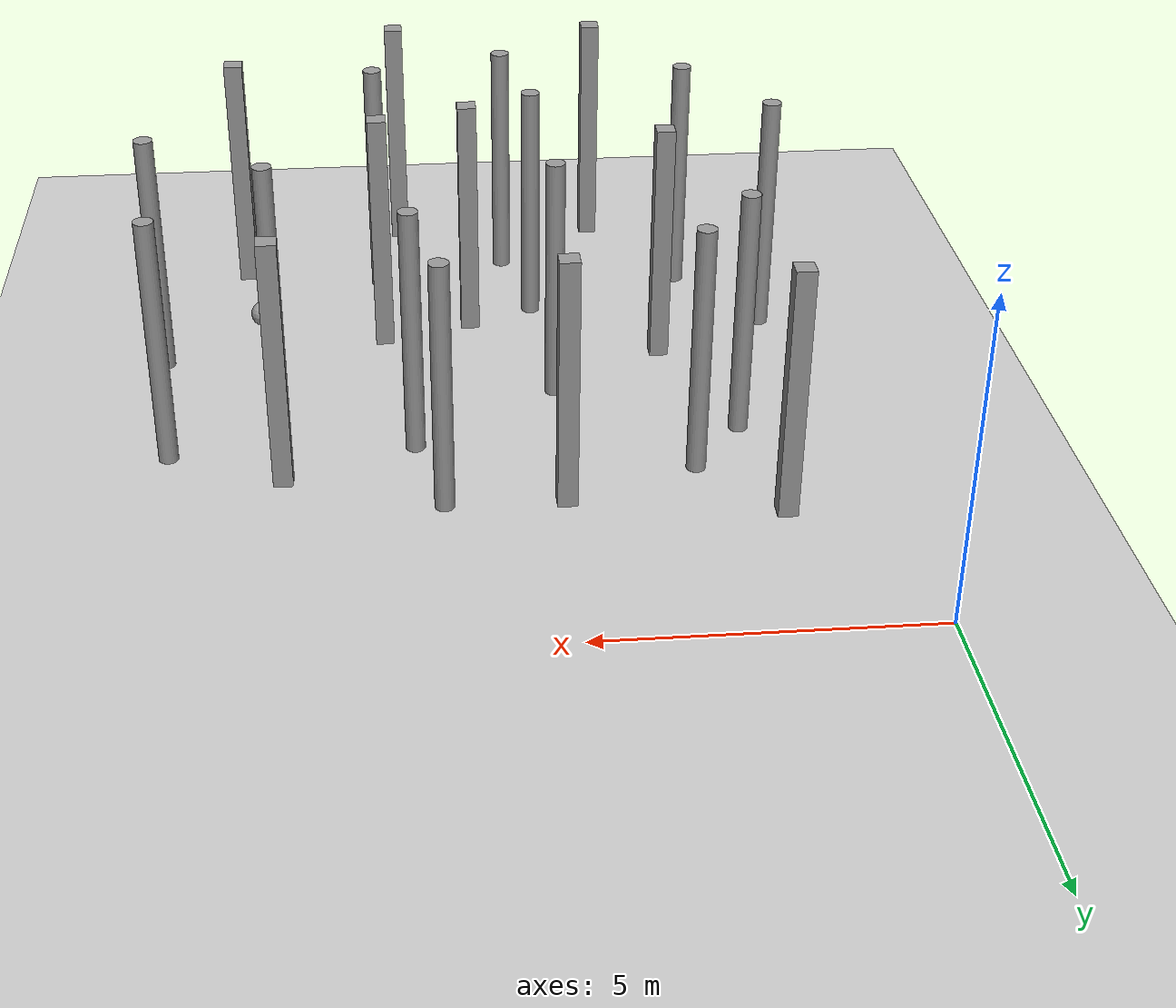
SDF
<sdf version="1.6">
 <world name="default">
  <model name="ground_plane">
   <static>1</static>
   <link name="link">
    <collision name="collision">
     <geometry><plane><normal>0 0 1</normal><size>100 100</size></plane></geometry>
    </collision>
    <visual name="visual">
     <cast_shadows>0</cast_shadows>
     <geometry><plane><normal>0 0 1</normal><size>100 100</size></plane></geometry>
     <material>
      <script><uri>file://media/materials/scripts/gazebo.material</uri><name>Gazebo/Gray</name></script>
     </material>
    </visual>
   </link>
  </model>
  <model name="unit_sphere">
   <link name="link">
    <inertial>
     <mass>1</mass>
     <inertia><ixx>0.1</ixx><ixy>0</ixy><ixz>0</ixz><iyy>0.1</iyy><iyz>0</iyz><izz>0.1</izz></inertia>
    </inertial>
    <gravity>0</gravity>
    <visual name="visual">
     <geometry><sphere><radius>0.203941</radius></sphere></geometry>
     <material>
      <script><name>Gazebo/Grey</name><uri>file://media/materials/scripts/gazebo.material</uri></script>
      <shader type="pixel"><normal_map>__default__</normal_map></shader>
     </material>
    </visual>
    <collision name="collision">
     <geometry><sphere><radius>0.203941</radius></sphere></geometry>
     <surface>
      <friction>
       <ode><mu>1</mu><mu2>1</mu2><fdir1>0 0 0</fdir1><slip1>0</slip1><slip2>0</slip2></ode>
       <torsional>
        <coefficient>1</coefficient>
        <patch_radius>0</patch_radius>
        <surface_radius>0</surface_radius>
        <use_patch_radius>1</use_patch_radius>
        <ode><slip>0</slip></ode>
       </torsional>
      </friction>
      <bounce><restitution_coefficient>0</restitution_coefficient><threshold>1e+06</threshold></bounce>
      <contact>
       <collide_without_contact>0</collide_without_contact>
       <collide_without_contact_bitmask>1</collide_without_contact_bitmask>
       <collide_bitmask>1</collide_bitmask>
       <ode>
        <soft_cfm>0</soft_cfm>
        <soft_erp>0.2</soft_erp>
        <kp>1e+13</kp>
        <kd>1</kd>
        <max_vel>0.01</max_vel>
        <min_depth>0</min_depth>
       </ode>
       <bullet>
        <split_impulse>1</split_impulse>
        <split_impulse_penetration_threshold>-0.01</split_impulse_penetration_threshold>
        <soft_cfm>0</soft_cfm>
        <soft_erp>0.2</soft_erp>
        <kp>1e+13</kp>
        <kd>1</kd>
       </bullet>
      </contact>
     </surface>
    </collision>
   </link>
   <static>0</static>
   <pose>9.54607 -9.14462 0.203941 0 -0 0</pose>
  </model>
  <model name="unit_box_clone_2">
   <link name="link">
    <inertial>
     <mass>1000</mass>
     <inertia><ixx>166.667</ixx><ixy>0</ixy><ixz>0</ixz><iyy>166.667</iyy><iyz>0</iyz><izz>166.667</izz></inertia>
    </inertial>
    <visual name="visual">
     <geometry><box><size>0.3 0.3 4</size></box></geometry>
     <material>
      <script><name>Gazebo/Grey</name><uri>file://media/materials/scripts/gazebo.material</uri></script>
      <shader type="vertex"><normal_map>__default__</normal_map></shader>
      <ambient>0.3 0.3 0.3 1</ambient>
      <diffuse>0.7 0.7 0.7 1</diffuse>
      <specular>0.01 0.01 0.01 1</specular>
      <emissive>0 0 0 1</emissive>
     </material>
    </visual>
    <collision name="collision">
     <geometry><box><size>0.3 0.3 4</size></box></geometry>
     <surface>
      <friction>
       <ode><mu>1</mu><mu2>1</mu2><fdir1>0 0 0</fdir1><slip1>0</slip1><slip2>0</slip2></ode>
       <torsional>
        <coefficient>1</coefficient>
        <patch_radius>0</patch_radius>
        <surface_radius>0</surface_radius>
        <use_patch_radius>1</use_patch_radius>
        <ode><slip>0</slip></ode>
       </torsional>
      </friction>
      <bounce><restitution_coefficient>0</restitution_coefficient><threshold>1e+06</threshold></bounce>
      <contact>
       <collide_without_contact>0</collide_without_contact>
       <collide_without_contact_bitmask>1</collide_without_contact_bitmask>
       <collide_bitmask>1</collide_bitmask>
       <ode>
        <soft_cfm>0</soft_cfm>
        <soft_erp>0.2</soft_erp>
        <kp>1e+13</kp>
        <kd>1</kd>
        <max_vel>0.01</max_vel>
        <min_depth>0</min_depth>
       </ode>
       <bullet>
        <split_impulse>1</split_impulse>
        <split_impulse_penetration_threshold>-0.01</split_impulse_penetration_threshold>
        <soft_cfm>0</soft_cfm>
        <soft_erp>0.2</soft_erp>
        <kp>1e+13</kp>
        <kd>1</kd>
       </bullet>
      </contact>
     </surface>
    </collision>
   </link>
   <static>0</static>
   <pose>4.92527 -3.34792 2 1e-06 2e-06 1.2e-05</pose>
  </model>
  <model name="unit_box_clone_7">
   <link name="link">
    <inertial>
     <mass>1000</mass>
     <inertia><ixx>166.667</ixx><ixy>0</ixy><ixz>0</ixz><iyy>166.667</iyy><iyz>0</iyz><izz>166.667</izz></inertia>
    </inertial>
    <visual name="visual">
     <geometry><box><size>0.3 0.3 4</size></box></geometry>
     <material>
      <script><name>Gazebo/Grey</name><uri>file://media/materials/scripts/gazebo.material</uri></script>
      <shader type="vertex"><normal_map>__default__</normal_map></shader>
      <ambient>0.3 0.3 0.3 1</ambient>
      <diffuse>0.7 0.7 0.7 1</diffuse>
      <specular>0.01 0.01 0.01 1</specular>
      <emissive>0 0 0 1</emissive>
     </material>
    </visual>
    <collision name="collision">
     <geometry><box><size>0.3 0.3 4</size></box></geometry>
     <surface>
      <friction>
       <ode><mu>1</mu><mu2>1</mu2><fdir1>0 0 0</fdir1><slip1>0</slip1><slip2>0</slip2></ode>
       <torsional>
        <coefficient>1</coefficient>
        <patch_radius>0</patch_radius>
        <surface_radius>0</surface_radius>
        <use_patch_radius>1</use_patch_radius>
        <ode><slip>0</slip></ode>
       </torsional>
      </friction>
      <bounce><restitution_coefficient>0</restitution_coefficient><threshold>1e+06</threshold></bounce>
      <contact>
       <collide_without_contact>0</collide_without_contact>
       <collide_without_contact_bitmask>1</collide_without_contact_bitmask>
       <collide_bitmask>1</collide_bitmask>
       <ode>
        <soft_cfm>0</soft_cfm>
        <soft_erp>0.2</soft_erp>
        <kp>1e+13</kp>
        <kd>1</kd>
        <max_vel>0.01</max_vel>
        <min_depth>0</min_depth>
       </ode>
       <bullet>
        <split_impulse>1</split_impulse>
        <split_impulse_penetration_threshold>-0.01</split_impulse_penetration_threshold>
        <soft_cfm>0</soft_cfm>
        <soft_erp>0.2</soft_erp>
        <kp>1e+13</kp>
        <kd>1</kd>
       </bullet>
      </contact>
     </surface>
    </collision>
   </link>
   <static>0</static>
   <pose>9.86052 -10.963 2 -1.2e-05 -4e-06 -0.004853</pose>
  </model>
  <model name="unit_cylinder_clone_0">
   <link name="link">
    <inertial>
     <mass>1000</mass>
     <inertia><ixx>145.833</ixx><ixy>0</ixy><ixz>0</ixz><iyy>145.833</iyy><iyz>0</iyz><izz>125</izz></inertia>
    </inertial>
    <visual name="visual">
     <geometry><cylinder><radius>0.15</radius><length>4</length></cylinder></geometry>
     <material>
      <script><name>Gazebo/Grey</name><uri>file://media/materials/scripts/gazebo.material</uri></script>
      <shader type="vertex"><normal_map>__default__</normal_map></shader>
      <ambient>0.3 0.3 0.3 1</ambient>
      <diffuse>0.7 0.7 0.7 1</diffuse>
      <specular>0.01 0.01 0.01 1</specular>
      <emissive>0 0 0 1</emissive>
     </material>
    </visual>
    <collision name="collision">
     <geometry><cylinder><radius>0.15</radius><length>4</length></cylinder></geometry>
     <surface>
      <friction>
       <ode><mu>1</mu><mu2>1</mu2><fdir1>0 0 0</fdir1><slip1>0</slip1><slip2>0</slip2></ode>
       <torsional>
        <coefficient>1</coefficient>
        <patch_radius>0</patch_radius>
        <surface_radius>0</surface_radius>
        <use_patch_radius>1</use_patch_radius>
        <ode><slip>0</slip></ode>
       </torsional>
      </friction>
      <bounce><restitution_coefficient>0</restitution_coefficient><threshold>1e+06</threshold></bounce>
      <contact>
       <collide_without_contact>0</collide_without_contact>
       <collide_without_contact_bitmask>1</collide_without_contact_bitmask>
       <collide_bitmask>1</collide_bitmask>
       <ode>
        <soft_cfm>0</soft_cfm>
        <soft_erp>0.2</soft_erp>
        <kp>1e+13</kp>
        <kd>1</kd>
        <max_vel>0.01</max_vel>
        <min_depth>0</min_depth>
       </ode>
       <bullet>
        <split_impulse>1</split_impulse>
        <split_impulse_penetration_threshold>-0.01</split_impulse_penetration_threshold>
        <soft_cfm>0</soft_cfm>
        <soft_erp>0.2</soft_erp>
        <kp>1e+13</kp>
        <kd>1</kd>
       </bullet>
      </contact>
     </surface>
    </collision>
   </link>
   <static>0</static>
   <pose>6.72054 -3.36529 1.99998 -1e-06 1e-06 -0.124958</pose>
  </model>
  <model name="unit_cylinder_clone_1">
   <link name="link">
    <inertial>
     <mass>1000</mass>
     <inertia><ixx>145.833</ixx><ixy>0</ixy><ixz>0</ixz><iyy>145.833</iyy><iyz>0</iyz><izz>125</izz></inertia>
    </inertial>
    <visual name="visual">
     <geometry><cylinder><radius>0.15</radius><length>4</length></cylinder></geometry>
     <material>
      <script><name>Gazebo/Grey</name><uri>file://media/materials/scripts/gazebo.material</uri></script>
      <shader type="vertex"><normal_map>__default__</normal_map></shader>
      <ambient>0.3 0.3 0.3 1</ambient>
      <diffuse>0.7 0.7 0.7 1</diffuse>
      <specular>0.01 0.01 0.01 1</specular>
      <emissive>0 0 0 1</emissive>
     </material>
    </visual>
    <collision name="collision">
     <geometry><cylinder><radius>0.15</radius><length>4</length></cylinder></geometry>
     <surface>
      <friction>
       <ode><mu>1</mu><mu2>1</mu2><fdir1>0 0 0</fdir1><slip1>0</slip1><slip2>0</slip2></ode>
       <torsional>
        <coefficient>1</coefficient>
        <patch_radius>0</patch_radius>
        <surface_radius>0</surface_radius>
        <use_patch_radius>1</use_patch_radius>
        <ode><slip>0</slip></ode>
       </torsional>
      </friction>
      <bounce><restitution_coefficient>0</restitution_coefficient><threshold>1e+06</threshold></bounce>
      <contact>
       <collide_without_contact>0</collide_without_contact>
       <collide_without_contact_bitmask>1</collide_without_contact_bitmask>
       <collide_bitmask>1</collide_bitmask>
       <ode>
        <soft_cfm>0</soft_cfm>
        <soft_erp>0.2</soft_erp>
        <kp>1e+13</kp>
        <kd>1</kd>
        <max_vel>0.01</max_vel>
        <min_depth>0</min_depth>
       </ode>
       <bullet>
        <split_impulse>1</split_impulse>
        <split_impulse_penetration_threshold>-0.01</split_impulse_penetration_threshold>
        <soft_cfm>0</soft_cfm>
        <soft_erp>0.2</soft_erp>
        <kp>1e+13</kp>
        <kd>1</kd>
       </bullet>
      </contact>
     </surface>
    </collision>
   </link>
   <static>0</static>
   <pose>2.0671 -5.17771 1.99998 -1e-06 1e-06 -0.117012</pose>
  </model>
  <model name="unit_cylinder_clone_2">
   <link name="link">
    <inertial>
     <mass>1000</mass>
     <inertia><ixx>145.833</ixx><ixy>0</ixy><ixz>0</ixz><iyy>145.833</iyy><iyz>0</iyz><izz>125</izz></inertia>
    </inertial>
    <visual name="visual">
     <geometry><cylinder><radius>0.15</radius><length>4</length></cylinder></geometry>
     <material>
      <script><name>Gazebo/Grey</name><uri>file://media/materials/scripts/gazebo.material</uri></script>
      <shader type="vertex"><normal_map>__default__</normal_map></shader>
      <ambient>0.3 0.3 0.3 1</ambient>
      <diffuse>0.7 0.7 0.7 1</diffuse>
      <specular>0.01 0.01 0.01 1</specular>
      <emissive>0 0 0 1</emissive>
     </material>
    </visual>
    <collision name="collision">
     <geometry><cylinder><radius>0.15</radius><length>4</length></cylinder></geometry>
     <surface>
      <friction>
       <ode><mu>1</mu><mu2>1</mu2><fdir1>0 0 0</fdir1><slip1>0</slip1><slip2>0</slip2></ode>
       <torsional>
        <coefficient>1</coefficient>
        <patch_radius>0</patch_radius>
        <surface_radius>0</surface_radius>
        <use_patch_radius>1</use_patch_radius>
        <ode><slip>0</slip></ode>
       </torsional>
      </friction>
      <bounce><restitution_coefficient>0</restitution_coefficient><threshold>1e+06</threshold></bounce>
      <contact>
       <collide_without_contact>0</collide_without_contact>
       <collide_without_contact_bitmask>1</collide_without_contact_bitmask>
       <collide_bitmask>1</collide_bitmask>
       <ode>
        <soft_cfm>0</soft_cfm>
        <soft_erp>0.2</soft_erp>
        <kp>1e+13</kp>
        <kd>1</kd>
        <max_vel>0.01</max_vel>
        <min_depth>0</min_depth>
       </ode>
       <bullet>
        <split_impulse>1</split_impulse>
        <split_impulse_penetration_threshold>-0.01</split_impulse_penetration_threshold>
        <soft_cfm>0</soft_cfm>
        <soft_erp>0.2</soft_erp>
        <kp>1e+13</kp>
        <kd>1</kd>
       </bullet>
      </contact>
     </surface>
    </collision>
   </link>
   <static>0</static>
   <pose>4.97452 -9.3049 1.99998 -2e-06 1e-06 -0.132911</pose>
  </model>
  <model name="unit_cylinder_clone_0_clone">
   <link name="link">
    <inertial>
     <mass>1000</mass>
     <inertia><ixx>145.833</ixx><ixy>0</ixy><ixz>0</ixz><iyy>145.833</iyy><iyz>0</iyz><izz>125</izz></inertia>
    </inertial>
    <visual name="visual">
     <geometry><cylinder><radius>0.15</radius><length>4</length></cylinder></geometry>
     <material>
      <script><name>Gazebo/Grey</name><uri>file://media/materials/scripts/gazebo.material</uri></script>
      <shader type="vertex"><normal_map>__default__</normal_map></shader>
      <ambient>0.3 0.3 0.3 1</ambient>
      <diffuse>0.7 0.7 0.7 1</diffuse>
      <specular>0.01 0.01 0.01 1</specular>
      <emissive>0 0 0 1</emissive>
     </material>
    </visual>
    <collision name="collision">
     <geometry><cylinder><radius>0.15</radius><length>4</length></cylinder></geometry>
     <surface>
      <friction>
       <ode><mu>1</mu><mu2>1</mu2><fdir1>0 0 0</fdir1><slip1>0</slip1><slip2>0</slip2></ode>
       <torsional>
        <coefficient>1</coefficient>
        <patch_radius>0</patch_radius>
        <surface_radius>0</surface_radius>
        <use_patch_radius>1</use_patch_radius>
        <ode><slip>0</slip></ode>
       </torsional>
      </friction>
      <bounce><restitution_coefficient>0</restitution_coefficient><threshold>1e+06</threshold></bounce>
      <contact>
       <collide_without_contact>0</collide_without_contact>
       <collide_without_contact_bitmask>1</collide_without_contact_bitmask>
       <collide_bitmask>1</collide_bitmask>
       <ode>
        <soft_cfm>0</soft_cfm>
        <soft_erp>0.2</soft_erp>
        <kp>1e+13</kp>
        <kd>1</kd>
        <max_vel>0.01</max_vel>
        <min_depth>0</min_depth>
       </ode>
       <bullet>
        <split_impulse>1</split_impulse>
        <split_impulse_penetration_threshold>-0.01</split_impulse_penetration_threshold>
        <soft_cfm>0</soft_cfm>
        <soft_erp>0.2</soft_erp>
        <kp>1e+13</kp>
        <kd>1</kd>
       </bullet>
      </contact>
     </surface>
    </collision>
   </link>
   <static>0</static>
   <pose>10.847 -4.99101 1.99998 -1e-06 1e-06 -0.116082</pose>
  </model>
  <model name="unit_cylinder_clone_1_clone_9">
   <link name="link">
    <inertial>
     <mass>1000</mass>
     <inertia><ixx>145.833</ixx><ixy>0</ixy><ixz>0</ixz><iyy>145.833</iyy><iyz>0</iyz><izz>125</izz></inertia>
    </inertial>
    <visual name="visual">
     <geometry><cylinder><radius>0.15</radius><length>4</length></cylinder></geometry>
     <material>
      <script><name>Gazebo/Grey</name><uri>file://media/materials/scripts/gazebo.material</uri></script>
      <shader type="vertex"><normal_map>__default__</normal_map></shader>
      <ambient>0.3 0.3 0.3 1</ambient>
      <diffuse>0.7 0.7 0.7 1</diffuse>
      <specular>0.01 0.01 0.01 1</specular>
      <emissive>0 0 0 1</emissive>
     </material>
    </visual>
    <collision name="collision">
     <geometry><cylinder><radius>0.15</radius><length>4</length></cylinder></geometry>
     <surface>
      <friction>
       <ode><mu>1</mu><mu2>1</mu2><fdir1>0 0 0</fdir1><slip1>0</slip1><slip2>0</slip2></ode>
       <torsional>
        <coefficient>1</coefficient>
        <patch_radius>0</patch_radius>
        <surface_radius>0</surface_radius>
        <use_patch_radius>1</use_patch_radius>
        <ode><slip>0</slip></ode>
       </torsional>
      </friction>
      <bounce><restitution_coefficient>0</restitution_coefficient><threshold>1e+06</threshold></bounce>
      <contact>
       <collide_without_contact>0</collide_without_contact>
       <collide_without_contact_bitmask>1</collide_without_contact_bitmask>
       <collide_bitmask>1</collide_bitmask>
       <ode>
        <soft_cfm>0</soft_cfm>
        <soft_erp>0.2</soft_erp>
        <kp>1e+13</kp>
        <kd>1</kd>
        <max_vel>0.01</max_vel>
        <min_depth>0</min_depth>
       </ode>
       <bullet>
        <split_impulse>1</split_impulse>
        <split_impulse_penetration_threshold>-0.01</split_impulse_penetration_threshold>
        <soft_cfm>0</soft_cfm>
        <soft_erp>0.2</soft_erp>
        <kp>1e+13</kp>
        <kd>1</kd>
       </bullet>
      </contact>
     </surface>
    </collision>
   </link>
   <static>0</static>
   <pose>11.1005 -7.87819 1.99995 -0.000268 4.9e-05 -0.611828</pose>
  </model>
  <model name="unit_cylinder_clone_1_clone_19">
   <link name="link">
    <inertial>
     <mass>1000</mass>
     <inertia><ixx>145.833</ixx><ixy>0</ixy><ixz>0</ixz><iyy>145.833</iyy><iyz>0</iyz><izz>125</izz></inertia>
    </inertial>
    <visual name="visual">
     <geometry><cylinder><radius>0.15</radius><length>4</length></cylinder></geometry>
     <material>
      <script><name>Gazebo/Grey</name><uri>file://media/materials/scripts/gazebo.material</uri></script>
      <shader type="vertex"><normal_map>__default__</normal_map></shader>
      <ambient>0.3 0.3 0.3 1</ambient>
      <diffuse>0.7 0.7 0.7 1</diffuse>
      <specular>0.01 0.01 0.01 1</specular>
      <emissive>0 0 0 1</emissive>
     </material>
    </visual>
    <collision name="collision">
     <geometry><cylinder><radius>0.15</radius><length>4</length></cylinder></geometry>
     <surface>
      <friction>
       <ode><mu>1</mu><mu2>1</mu2><fdir1>0 0 0</fdir1><slip1>0</slip1><slip2>0</slip2></ode>
       <torsional>
        <coefficient>1</coefficient>
        <patch_radius>0</patch_radius>
        <surface_radius>0</surface_radius>
        <use_patch_radius>1</use_patch_radius>
        <ode><slip>0</slip></ode>
       </torsional>
      </friction>
      <bounce><restitution_coefficient>0</restitution_coefficient><threshold>1e+06</threshold></bounce>
      <contact>
       <collide_without_contact>0</collide_without_contact>
       <collide_without_contact_bitmask>1</collide_without_contact_bitmask>
       <collide_bitmask>1</collide_bitmask>
       <ode>
        <soft_cfm>0</soft_cfm>
        <soft_erp>0.2</soft_erp>
        <kp>1e+13</kp>
        <kd>1</kd>
        <max_vel>0.01</max_vel>
        <min_depth>0</min_depth>
       </ode>
       <bullet>
        <split_impulse>1</split_impulse>
        <split_impulse_penetration_threshold>-0.01</split_impulse_penetration_threshold>
        <soft_cfm>0</soft_cfm>
        <soft_erp>0.2</soft_erp>
        <kp>1e+13</kp>
        <kd>1</kd>
       </bullet>
      </contact>
     </surface>
    </collision>
   </link>
   <static>0</static>
   <pose>1.12153 -8.56646 1.99995 -0.000268 4.9e-05 -0.613825</pose>
  </model>
  <model name="unit_cylinder_clone_1_clone_23">
   <link name="link">
    <inertial>
     <mass>1000</mass>
     <inertia><ixx>145.833</ixx><ixy>0</ixy><ixz>0</ixz><iyy>145.833</iyy><iyz>0</iyz><izz>125</izz></inertia>
    </inertial>
    <visual name="visual">
     <geometry><cylinder><radius>0.15</radius><length>4</length></cylinder></geometry>
     <material>
      <script><name>Gazebo/Grey</name><uri>file://media/materials/scripts/gazebo.material</uri></script>
      <shader type="vertex"><normal_map>__default__</normal_map></shader>
      <ambient>0.3 0.3 0.3 1</ambient>
      <diffuse>0.7 0.7 0.7 1</diffuse>
      <specular>0.01 0.01 0.01 1</specular>
      <emissive>0 0 0 1</emissive>
     </material>
    </visual>
    <collision name="collision">
     <geometry><cylinder><radius>0.15</radius><length>4</length></cylinder></geometry>
     <surface>
      <friction>
       <ode><mu>1</mu><mu2>1</mu2><fdir1>0 0 0</fdir1><slip1>0</slip1><slip2>0</slip2></ode>
       <torsional>
        <coefficient>1</coefficient>
        <patch_radius>0</patch_radius>
        <surface_radius>0</surface_radius>
        <use_patch_radius>1</use_patch_radius>
        <ode><slip>0</slip></ode>
       </torsional>
      </friction>
      <bounce><restitution_coefficient>0</restitution_coefficient><threshold>1e+06</threshold></bounce>
      <contact>
       <collide_without_contact>0</collide_without_contact>
       <collide_without_contact_bitmask>1</collide_without_contact_bitmask>
       <collide_bitmask>1</collide_bitmask>
       <ode>
        <soft_cfm>0</soft_cfm>
        <soft_erp>0.2</soft_erp>
        <kp>1e+13</kp>
        <kd>1</kd>
        <max_vel>0.01</max_vel>
        <min_depth>0</min_depth>
       </ode>
       <bullet>
        <split_impulse>1</split_impulse>
        <split_impulse_penetration_threshold>-0.01</split_impulse_penetration_threshold>
        <soft_cfm>0</soft_cfm>
        <soft_erp>0.2</soft_erp>
        <kp>1e+13</kp>
        <kd>1</kd>
       </bullet>
      </contact>
     </surface>
    </collision>
   </link>
   <static>0</static>
   <pose>7.09331 -5.00872 1.99998 -1e-06 -1e-06 -0.292628</pose>
  </model>
  <model name="unit_cylinder_clone_1_clone_24">
   <link name="link">
    <inertial>
     <mass>1000</mass>
     <inertia><ixx>145.833</ixx><ixy>0</ixy><ixz>0</ixz><iyy>145.833</iyy><iyz>0</iyz><izz>125</izz></inertia>
    </inertial>
    <visual name="visual">
     <geometry><cylinder><radius>0.15</radius><length>4</length></cylinder></geometry>
     <material>
      <script><name>Gazebo/Grey</name><uri>file://media/materials/scripts/gazebo.material</uri></script>
      <shader type="vertex"><normal_map>__default__</normal_map></shader>
      <ambient>0.3 0.3 0.3 1</ambient>
      <diffuse>0.7 0.7 0.7 1</diffuse>
      <specular>0.01 0.01 0.01 1</specular>
      <emissive>0 0 0 1</emissive>
     </material>
    </visual>
    <collision name="collision">
     <geometry><cylinder><radius>0.15</radius><length>4</length></cylinder></geometry>
     <surface>
      <friction>
       <ode><mu>1</mu><mu2>1</mu2><fdir1>0 0 0</fdir1><slip1>0</slip1><slip2>0</slip2></ode>
       <torsional>
        <coefficient>1</coefficient>
        <patch_radius>0</patch_radius>
        <surface_radius>0</surface_radius>
        <use_patch_radius>1</use_patch_radius>
        <ode><slip>0</slip></ode>
       </torsional>
      </friction>
      <bounce><restitution_coefficient>0</restitution_coefficient><threshold>1e+06</threshold></bounce>
      <contact>
       <collide_without_contact>0</collide_without_contact>
       <collide_without_contact_bitmask>1</collide_without_contact_bitmask>
       <collide_bitmask>1</collide_bitmask>
       <ode>
        <soft_cfm>0</soft_cfm>
        <soft_erp>0.2</soft_erp>
        <kp>1e+13</kp>
        <kd>1</kd>
        <max_vel>0.01</max_vel>
        <min_depth>0</min_depth>
       </ode>
       <bullet>
        <split_impulse>1</split_impulse>
        <split_impulse_penetration_threshold>-0.01</split_impulse_penetration_threshold>
        <soft_cfm>0</soft_cfm>
        <soft_erp>0.2</soft_erp>
        <kp>1e+13</kp>
        <kd>1</kd>
       </bullet>
      </contact>
     </surface>
    </collision>
   </link>
   <static>0</static>
   <pose>9.23703 -6.74087 1.99995 -0.000268 4.9e-05 -0.614826</pose>
  </model>
  <model name="unit_cylinder_clone_1_clone_7_clone_4">
   <link name="link">
    <inertial>
     <mass>1000</mass>
     <inertia><ixx>145.833</ixx><ixy>0</ixy><ixz>0</ixz><iyy>145.833</iyy><iyz>0</iyz><izz>125</izz></inertia>
    </inertial>
    <visual name="visual">
     <geometry><cylinder><radius>0.15</radius><length>4</length></cylinder></geometry>
     <material>
      <script><name>Gazebo/Grey</name><uri>file://media/materials/scripts/gazebo.material</uri></script>
      <shader type="vertex"><normal_map>__default__</normal_map></shader>
      <ambient>0.3 0.3 0.3 1</ambient>
      <diffuse>0.7 0.7 0.7 1</diffuse>
      <specular>0.01 0.01 0.01 1</specular>
      <emissive>0 0 0 1</emissive>
     </material>
    </visual>
    <collision name="collision">
     <geometry><cylinder><radius>0.15</radius><length>4</length></cylinder></geometry>
     <surface>
      <friction>
       <ode><mu>1</mu><mu2>1</mu2><fdir1>0 0 0</fdir1><slip1>0</slip1><slip2>0</slip2></ode>
       <torsional>
        <coefficient>1</coefficient>
        <patch_radius>0</patch_radius>
        <surface_radius>0</surface_radius>
        <use_patch_radius>1</use_patch_radius>
        <ode><slip>0</slip></ode>
       </torsional>
      </friction>
      <bounce><restitution_coefficient>0</restitution_coefficient><threshold>1e+06</threshold></bounce>
      <contact>
       <collide_without_contact>0</collide_without_contact>
       <collide_without_contact_bitmask>1</collide_without_contact_bitmask>
       <collide_bitmask>1</collide_bitmask>
       <ode>
        <soft_cfm>0</soft_cfm>
        <soft_erp>0.2</soft_erp>
        <kp>1e+13</kp>
        <kd>1</kd>
        <max_vel>0.01</max_vel>
        <min_depth>0</min_depth>
       </ode>
       <bullet>
        <split_impulse>1</split_impulse>
        <split_impulse_penetration_threshold>-0.01</split_impulse_penetration_threshold>
        <soft_cfm>0</soft_cfm>
        <soft_erp>0.2</soft_erp>
        <kp>1e+13</kp>
        <kd>1</kd>
       </bullet>
      </contact>
     </surface>
    </collision>
   </link>
   <static>0</static>
   <pose>2.33858 -10.2497 1.99995 -0.000268 4.9e-05 -0.611674</pose>
  </model>
  <model name="unit_cylinder_clone_1_clone_7_clone_9">
   <link name="link">
    <inertial>
     <mass>1000</mass>
     <inertia><ixx>145.833</ixx><ixy>0</ixy><ixz>0</ixz><iyy>145.833</iyy><iyz>0</iyz><izz>125</izz></inertia>
    </inertial>
    <visual name="visual">
     <geometry><cylinder><radius>0.15</radius><length>4</length></cylinder></geometry>
     <material>
      <script><name>Gazebo/Grey</name><uri>file://media/materials/scripts/gazebo.material</uri></script>
      <shader type="vertex"><normal_map>__default__</normal_map></shader>
      <ambient>0.3 0.3 0.3 1</ambient>
      <diffuse>0.7 0.7 0.7 1</diffuse>
      <specular>0.01 0.01 0.01 1</specular>
      <emissive>0 0 0 1</emissive>
     </material>
    </visual>
    <collision name="collision">
     <geometry><cylinder><radius>0.15</radius><length>4</length></cylinder></geometry>
     <surface>
      <friction>
       <ode><mu>1</mu><mu2>1</mu2><fdir1>0 0 0</fdir1><slip1>0</slip1><slip2>0</slip2></ode>
       <torsional>
        <coefficient>1</coefficient>
        <patch_radius>0</patch_radius>
        <surface_radius>0</surface_radius>
        <use_patch_radius>1</use_patch_radius>
        <ode><slip>0</slip></ode>
       </torsional>
      </friction>
      <bounce><restitution_coefficient>0</restitution_coefficient><threshold>1e+06</threshold></bounce>
      <contact>
       <collide_without_contact>0</collide_without_contact>
       <collide_without_contact_bitmask>1</collide_without_contact_bitmask>
       <collide_bitmask>1</collide_bitmask>
       <ode>
        <soft_cfm>0</soft_cfm>
        <soft_erp>0.2</soft_erp>
        <kp>1e+13</kp>
        <kd>1</kd>
        <max_vel>0.01</max_vel>
        <min_depth>0</min_depth>
       </ode>
       <bullet>
        <split_impulse>1</split_impulse>
        <split_impulse_penetration_threshold>-0.01</split_impulse_penetration_threshold>
        <soft_cfm>0</soft_cfm>
        <soft_erp>0.2</soft_erp>
        <kp>1e+13</kp>
        <kd>1</kd>
       </bullet>
      </contact>
     </surface>
    </collision>
   </link>
   <static>0</static>
   <pose>2.89558 -4.09527 1.99995 -0.000268 5.1e-05 -0.606843</pose>
  </model>
  <model name="unit_cylinder_clone_clone">
   <link name="link">
    <inertial>
     <mass>1000</mass>
     <inertia><ixx>145.833</ixx><ixy>0</ixy><ixz>0</ixz><iyy>145.833</iyy><iyz>0</iyz><izz>125</izz></inertia>
    </inertial>
    <visual name="visual">
     <geometry><cylinder><radius>0.15</radius><length>4</length></cylinder></geometry>
     <material>
      <script><name>Gazebo/Grey</name><uri>file://media/materials/scripts/gazebo.material</uri></script>
      <shader type="vertex"><normal_map>__default__</normal_map></shader>
      <ambient>0.3 0.3 0.3 1</ambient>
      <diffuse>0.7 0.7 0.7 1</diffuse>
      <specular>0.01 0.01 0.01 1</specular>
      <emissive>0 0 0 1</emissive>
     </material>
    </visual>
    <collision name="collision">
     <geometry><cylinder><radius>0.15</radius><length>4</length></cylinder></geometry>
     <surface>
      <friction>
       <ode><mu>1</mu><mu2>1</mu2><fdir1>0 0 0</fdir1><slip1>0</slip1><slip2>0</slip2></ode>
       <torsional>
        <coefficient>1</coefficient>
        <patch_radius>0</patch_radius>
        <surface_radius>0</surface_radius>
        <use_patch_radius>1</use_patch_radius>
        <ode><slip>0</slip></ode>
       </torsional>
      </friction>
      <bounce><restitution_coefficient>0</restitution_coefficient><threshold>1e+06</threshold></bounce>
      <contact>
       <collide_without_contact>0</collide_without_contact>
       <collide_without_contact_bitmask>1</collide_without_contact_bitmask>
       <collide_bitmask>1</collide_bitmask>
       <ode>
        <soft_cfm>0</soft_cfm>
        <soft_erp>0.2</soft_erp>
        <kp>1e+13</kp>
        <kd>1</kd>
        <max_vel>0.01</max_vel>
        <min_depth>0</min_depth>
       </ode>
       <bullet>
        <split_impulse>1</split_impulse>
        <split_impulse_penetration_threshold>-0.01</split_impulse_penetration_threshold>
        <soft_cfm>0</soft_cfm>
        <soft_erp>0.2</soft_erp>
        <kp>1e+13</kp>
        <kd>1</kd>
       </bullet>
      </contact>
     </surface>
    </collision>
   </link>
   <static>0</static>
   <pose>5.34931 -11.1063 1.99998 -2e-06 -0 -0.120951</pose>
  </model>
  <model name="unit_cylinder_clone_clone_0">
   <link name="link">
    <inertial>
     <mass>1000</mass>
     <inertia><ixx>145.833</ixx><ixy>0</ixy><ixz>0</ixz><iyy>145.833</iyy><iyz>0</iyz><izz>125</izz></inertia>
    </inertial>
    <visual name="visual">
     <geometry><cylinder><radius>0.15</radius><length>4</length></cylinder></geometry>
     <material>
      <script><name>Gazebo/Grey</name><uri>file://media/materials/scripts/gazebo.material</uri></script>
      <shader type="vertex"><normal_map>__default__</normal_map></shader>
      <ambient>0.3 0.3 0.3 1</ambient>
      <diffuse>0.7 0.7 0.7 1</diffuse>
      <specular>0.01 0.01 0.01 1</specular>
      <emissive>0 0 0 1</emissive>
     </material>
    </visual>
    <collision name="collision">
     <geometry><cylinder><radius>0.15</radius><length>4</length></cylinder></geometry>
     <surface>
      <friction>
       <ode><mu>1</mu><mu2>1</mu2><fdir1>0 0 0</fdir1><slip1>0</slip1><slip2>0</slip2></ode>
       <torsional>
        <coefficient>1</coefficient>
        <patch_radius>0</patch_radius>
        <surface_radius>0</surface_radius>
        <use_patch_radius>1</use_patch_radius>
        <ode><slip>0</slip></ode>
       </torsional>
      </friction>
      <bounce><restitution_coefficient>0</restitution_coefficient><threshold>1e+06</threshold></bounce>
      <contact>
       <collide_without_contact>0</collide_without_contact>
       <collide_without_contact_bitmask>1</collide_without_contact_bitmask>
       <collide_bitmask>1</collide_bitmask>
       <ode>
        <soft_cfm>0</soft_cfm>
        <soft_erp>0.2</soft_erp>
        <kp>1e+13</kp>
        <kd>1</kd>
        <max_vel>0.01</max_vel>
        <min_depth>0</min_depth>
       </ode>
       <bullet>
        <split_impulse>1</split_impulse>
        <split_impulse_penetration_threshold>-0.01</split_impulse_penetration_threshold>
        <soft_cfm>0</soft_cfm>
        <soft_erp>0.2</soft_erp>
        <kp>1e+13</kp>
        <kd>1</kd>
       </bullet>
      </contact>
     </surface>
    </collision>
   </link>
   <static>0</static>
   <pose>7.5343 -10.501 1.99998 -2e-06 1e-06 -0.124046</pose>
  </model>
  <model name="unit_cylinder_clone_clone_1">
   <link name="link">
    <inertial>
     <mass>1000</mass>
     <inertia><ixx>145.833</ixx><ixy>0</ixy><ixz>0</ixz><iyy>145.833</iyy><iyz>0</iyz><izz>125</izz></inertia>
    </inertial>
    <visual name="visual">
     <geometry><cylinder><radius>0.15</radius><length>4</length></cylinder></geometry>
     <material>
      <script><name>Gazebo/Grey</name><uri>file://media/materials/scripts/gazebo.material</uri></script>
      <shader type="vertex"><normal_map>__default__</normal_map></shader>
      <ambient>0.3 0.3 0.3 1</ambient>
      <diffuse>0.7 0.7 0.7 1</diffuse>
      <specular>0.01 0.01 0.01 1</specular>
      <emissive>0 0 0 1</emissive>
     </material>
    </visual>
    <collision name="collision">
     <geometry><cylinder><radius>0.15</radius><length>4</length></cylinder></geometry>
     <surface>
      <friction>
       <ode><mu>1</mu><mu2>1</mu2><fdir1>0 0 0</fdir1><slip1>0</slip1><slip2>0</slip2></ode>
       <torsional>
        <coefficient>1</coefficient>
        <patch_radius>0</patch_radius>
        <surface_radius>0</surface_radius>
        <use_patch_radius>1</use_patch_radius>
        <ode><slip>0</slip></ode>
       </torsional>
      </friction>
      <bounce><restitution_coefficient>0</restitution_coefficient><threshold>1e+06</threshold></bounce>
      <contact>
       <collide_without_contact>0</collide_without_contact>
       <collide_without_contact_bitmask>1</collide_without_contact_bitmask>
       <collide_bitmask>1</collide_bitmask>
       <ode>
        <soft_cfm>0</soft_cfm>
        <soft_erp>0.2</soft_erp>
        <kp>1e+13</kp>
        <kd>1</kd>
        <max_vel>0.01</max_vel>
        <min_depth>0</min_depth>
       </ode>
       <bullet>
        <split_impulse>1</split_impulse>
        <split_impulse_penetration_threshold>-0.01</split_impulse_penetration_threshold>
        <soft_cfm>0</soft_cfm>
        <soft_erp>0.2</soft_erp>
        <kp>1e+13</kp>
        <kd>1</kd>
       </bullet>
      </contact>
     </surface>
    </collision>
   </link>
   <static>0</static>
   <pose>4.81825 -6.50983 1.99998 -2e-06 1e-06 -0.131631</pose>
  </model>
  <model name="unit_box_clone_26_clone">
   <link name="link">
    <inertial>
     <mass>1000</mass>
     <inertia><ixx>166.667</ixx><ixy>0</ixy><ixz>0</ixz><iyy>166.667</iyy><iyz>0</iyz><izz>166.667</izz></inertia>
    </inertial>
    <visual name="visual">
     <geometry><box><size>0.3 0.3 4</size></box></geometry>
     <material>
      <script><name>Gazebo/Grey</name><uri>file://media/materials/scripts/gazebo.material</uri></script>
      <shader type="vertex"><normal_map>__default__</normal_map></shader>
      <ambient>0.3 0.3 0.3 1</ambient>
      <diffuse>0.7 0.7 0.7 1</diffuse>
      <specular>0.01 0.01 0.01 1</specular>
      <emissive>0 0 0 1</emissive>
     </material>
    </visual>
    <collision name="collision">
     <geometry><box><size>0.3 0.3 4</size></box></geometry>
     <surface>
      <friction>
       <ode><mu>1</mu><mu2>1</mu2><fdir1>0 0 0</fdir1><slip1>0</slip1><slip2>0</slip2></ode>
       <torsional>
        <coefficient>1</coefficient>
        <patch_radius>0</patch_radius>
        <surface_radius>0</surface_radius>
        <use_patch_radius>1</use_patch_radius>
        <ode><slip>0</slip></ode>
       </torsional>
      </friction>
      <bounce><restitution_coefficient>0</restitution_coefficient><threshold>1e+06</threshold></bounce>
      <contact>
       <collide_without_contact>0</collide_without_contact>
       <collide_without_contact_bitmask>1</collide_without_contact_bitmask>
       <collide_bitmask>1</collide_bitmask>
       <ode>
        <soft_cfm>0</soft_cfm>
        <soft_erp>0.2</soft_erp>
        <kp>1e+13</kp>
        <kd>1</kd>
        <max_vel>0.01</max_vel>
        <min_depth>0</min_depth>
       </ode>
       <bullet>
        <split_impulse>1</split_impulse>
        <split_impulse_penetration_threshold>-0.01</split_impulse_penetration_threshold>
        <soft_cfm>0</soft_cfm>
        <soft_erp>0.2</soft_erp>
        <kp>1e+13</kp>
        <kd>1</kd>
       </bullet>
      </contact>
     </surface>
    </collision>
   </link>
   <static>0</static>
   <pose>6.04361 -8.86033 2 0 -8e-06 0.002922</pose>
  </model>
  <model name="unit_box_clone_26_clone_0">
   <link name="link">
    <inertial>
     <mass>1000</mass>
     <inertia><ixx>166.667</ixx><ixy>0</ixy><ixz>0</ixz><iyy>166.667</iyy><iyz>0</iyz><izz>166.667</izz></inertia>
    </inertial>
    <visual name="visual">
     <geometry><box><size>0.3 0.3 4</size></box></geometry>
     <material>
      <script><name>Gazebo/Grey</name><uri>file://media/materials/scripts/gazebo.material</uri></script>
      <shader type="vertex"><normal_map>__default__</normal_map></shader>
      <ambient>0.3 0.3 0.3 1</ambient>
      <diffuse>0.7 0.7 0.7 1</diffuse>
      <specular>0.01 0.01 0.01 1</specular>
      <emissive>0 0 0 1</emissive>
     </material>
    </visual>
    <collision name="collision">
     <geometry><box><size>0.3 0.3 4</size></box></geometry>
     <surface>
      <friction>
       <ode><mu>1</mu><mu2>1</mu2><fdir1>0 0 0</fdir1><slip1>0</slip1><slip2>0</slip2></ode>
       <torsional>
        <coefficient>1</coefficient>
        <patch_radius>0</patch_radius>
        <surface_radius>0</surface_radius>
        <use_patch_radius>1</use_patch_radius>
        <ode><slip>0</slip></ode>
       </torsional>
      </friction>
      <bounce><restitution_coefficient>0</restitution_coefficient><threshold>1e+06</threshold></bounce>
      <contact>
       <collide_without_contact>0</collide_without_contact>
       <collide_without_contact_bitmask>1</collide_without_contact_bitmask>
       <collide_bitmask>1</collide_bitmask>
       <ode>
        <soft_cfm>0</soft_cfm>
        <soft_erp>0.2</soft_erp>
        <kp>1e+13</kp>
        <kd>1</kd>
        <max_vel>0.01</max_vel>
        <min_depth>0</min_depth>
       </ode>
       <bullet>
        <split_impulse>1</split_impulse>
        <split_impulse_penetration_threshold>-0.01</split_impulse_penetration_threshold>
        <soft_cfm>0</soft_cfm>
        <soft_erp>0.2</soft_erp>
        <kp>1e+13</kp>
        <kd>1</kd>
       </bullet>
      </contact>
     </surface>
    </collision>
   </link>
   <static>0</static>
   <pose>2.9834 -7.6671 2.00001 -8e-06 5.2e-05 -0.005752</pose>
  </model>
  <model name="unit_box_clone_26_clone_1">
   <link name="link">
    <inertial>
     <mass>1000</mass>
     <inertia><ixx>166.667</ixx><ixy>0</ixy><ixz>0</ixz><iyy>166.667</iyy><iyz>0</iyz><izz>166.667</izz></inertia>
    </inertial>
    <visual name="visual">
     <geometry><box><size>0.3 0.3 4</size></box></geometry>
     <material>
      <script><name>Gazebo/Grey</name><uri>file://media/materials/scripts/gazebo.material</uri></script>
      <shader type="vertex"><normal_map>__default__</normal_map></shader>
      <ambient>0.3 0.3 0.3 1</ambient>
      <diffuse>0.7 0.7 0.7 1</diffuse>
      <specular>0.01 0.01 0.01 1</specular>
      <emissive>0 0 0 1</emissive>
     </material>
    </visual>
    <collision name="collision">
     <geometry><box><size>0.3 0.3 4</size></box></geometry>
     <surface>
      <friction>
       <ode><mu>1</mu><mu2>1</mu2><fdir1>0 0 0</fdir1><slip1>0</slip1><slip2>0</slip2></ode>
       <torsional>
        <coefficient>1</coefficient>
        <patch_radius>0</patch_radius>
        <surface_radius>0</surface_radius>
        <use_patch_radius>1</use_patch_radius>
        <ode><slip>0</slip></ode>
       </torsional>
      </friction>
      <bounce><restitution_coefficient>0</restitution_coefficient><threshold>1e+06</threshold></bounce>
      <contact>
       <collide_without_contact>0</collide_without_contact>
       <collide_without_contact_bitmask>1</collide_without_contact_bitmask>
       <collide_bitmask>1</collide_bitmask>
       <ode>
        <soft_cfm>0</soft_cfm>
        <soft_erp>0.2</soft_erp>
        <kp>1e+13</kp>
        <kd>1</kd>
        <max_vel>0.01</max_vel>
        <min_depth>0</min_depth>
       </ode>
       <bullet>
        <split_impulse>1</split_impulse>
        <split_impulse_penetration_threshold>-0.01</split_impulse_penetration_threshold>
        <soft_cfm>0</soft_cfm>
        <soft_erp>0.2</soft_erp>
        <kp>1e+13</kp>
        <kd>1</kd>
       </bullet>
      </contact>
     </surface>
    </collision>
   </link>
   <static>0</static>
   <pose>1.75863 -2.82237 2 -3e-06 4e-06 -0.006536</pose>
  </model>
  <model name="unit_box_clone_26_clone_3">
   <link name="link">
    <inertial>
     <mass>1000</mass>
     <inertia><ixx>166.667</ixx><ixy>0</ixy><ixz>0</ixz><iyy>166.667</iyy><iyz>0</iyz><izz>166.667</izz></inertia>
    </inertial>
    <visual name="visual">
     <geometry><box><size>0.3 0.3 4</size></box></geometry>
     <material>
      <script><name>Gazebo/Grey</name><uri>file://media/materials/scripts/gazebo.material</uri></script>
      <shader type="vertex"><normal_map>__default__</normal_map></shader>
      <ambient>0.3 0.3 0.3 1</ambient>
      <diffuse>0.7 0.7 0.7 1</diffuse>
      <specular>0.01 0.01 0.01 1</specular>
      <emissive>0 0 0 1</emissive>
     </material>
    </visual>
    <collision name="collision">
     <geometry><box><size>0.3 0.3 4</size></box></geometry>
     <surface>
      <friction>
       <ode><mu>1</mu><mu2>1</mu2><fdir1>0 0 0</fdir1><slip1>0</slip1><slip2>0</slip2></ode>
       <torsional>
        <coefficient>1</coefficient>
        <patch_radius>0</patch_radius>
        <surface_radius>0</surface_radius>
        <use_patch_radius>1</use_patch_radius>
        <ode><slip>0</slip></ode>
       </torsional>
      </friction>
      <bounce><restitution_coefficient>0</restitution_coefficient><threshold>1e+06</threshold></bounce>
      <contact>
       <collide_without_contact>0</collide_without_contact>
       <collide_without_contact_bitmask>1</collide_without_contact_bitmask>
       <collide_bitmask>1</collide_bitmask>
       <ode>
        <soft_cfm>0</soft_cfm>
        <soft_erp>0.2</soft_erp>
        <kp>1e+13</kp>
        <kd>1</kd>
        <max_vel>0.01</max_vel>
        <min_depth>0</min_depth>
       </ode>
       <bullet>
        <split_impulse>1</split_impulse>
        <split_impulse_penetration_threshold>-0.01</split_impulse_penetration_threshold>
        <soft_cfm>0</soft_cfm>
        <soft_erp>0.2</soft_erp>
        <kp>1e+13</kp>
        <kd>1</kd>
       </bullet>
      </contact>
     </surface>
    </collision>
   </link>
   <static>0</static>
   <pose>9.09109 -4.22022 2 -2e-06 -1.2e-05 -0.002741</pose>
  </model>
  <model name="unit_box_clone_26_clone_7">
   <link name="link">
    <inertial>
     <mass>1000</mass>
     <inertia><ixx>166.667</ixx><ixy>0</ixy><ixz>0</ixz><iyy>166.667</iyy><iyz>0</iyz><izz>166.667</izz></inertia>
    </inertial>
    <visual name="visual">
     <geometry><box><size>0.3 0.3 4</size></box></geometry>
     <material>
      <script><name>Gazebo/Grey</name><uri>file://media/materials/scripts/gazebo.material</uri></script>
      <shader type="vertex"><normal_map>__default__</normal_map></shader>
      <ambient>0.3 0.3 0.3 1</ambient>
      <diffuse>0.7 0.7 0.7 1</diffuse>
      <specular>0.01 0.01 0.01 1</specular>
      <emissive>0 0 0 1</emissive>
     </material>
    </visual>
    <collision name="collision">
     <geometry><box><size>0.3 0.3 4</size></box></geometry>
     <surface>
      <friction>
       <ode><mu>1</mu><mu2>1</mu2><fdir1>0 0 0</fdir1><slip1>0</slip1><slip2>0</slip2></ode>
       <torsional>
        <coefficient>1</coefficient>
        <patch_radius>0</patch_radius>
        <surface_radius>0</surface_radius>
        <use_patch_radius>1</use_patch_radius>
        <ode><slip>0</slip></ode>
       </torsional>
      </friction>
      <bounce><restitution_coefficient>0</restitution_coefficient><threshold>1e+06</threshold></bounce>
      <contact>
       <collide_without_contact>0</collide_without_contact>
       <collide_without_contact_bitmask>1</collide_without_contact_bitmask>
       <collide_bitmask>1</collide_bitmask>
       <ode>
        <soft_cfm>0</soft_cfm>
        <soft_erp>0.2</soft_erp>
        <kp>1e+13</kp>
        <kd>1</kd>
        <max_vel>0.01</max_vel>
        <min_depth>0</min_depth>
       </ode>
       <bullet>
        <split_impulse>1</split_impulse>
        <split_impulse_penetration_threshold>-0.01</split_impulse_penetration_threshold>
        <soft_cfm>0</soft_cfm>
        <soft_erp>0.2</soft_erp>
        <kp>1e+13</kp>
        <kd>1</kd>
       </bullet>
      </contact>
     </surface>
    </collision>
   </link>
   <static>0</static>
   <pose>7.49439 -8.42372 2 -1e-06 3e-06 -0.001574</pose>
  </model>
  <model name="unit_box_clone_26_clone_11">
   <link name="link">
    <inertial>
     <mass>1000</mass>
     <inertia><ixx>166.667</ixx><ixy>0</ixy><ixz>0</ixz><iyy>166.667</iyy><iyz>0</iyz><izz>166.667</izz></inertia>
    </inertial>
    <visual name="visual">
     <geometry><box><size>0.3 0.3 4</size></box></geometry>
     <material>
      <script><name>Gazebo/Grey</name><uri>file://media/materials/scripts/gazebo.material</uri></script>
      <shader type="vertex"><normal_map>__default__</normal_map></shader>
      <ambient>0.3 0.3 0.3 1</ambient>
      <diffuse>0.7 0.7 0.7 1</diffuse>
      <specular>0.01 0.01 0.01 1</specular>
      <emissive>0 0 0 1</emissive>
     </material>
    </visual>
    <collision name="collision">
     <geometry><box><size>0.3 0.3 4</size></box></geometry>
     <surface>
      <friction>
       <ode><mu>1</mu><mu2>1</mu2><fdir1>0 0 0</fdir1><slip1>0</slip1><slip2>0</slip2></ode>
       <torsional>
        <coefficient>1</coefficient>
        <patch_radius>0</patch_radius>
        <surface_radius>0</surface_radius>
        <use_patch_radius>1</use_patch_radius>
        <ode><slip>0</slip></ode>
       </torsional>
      </friction>
      <bounce><restitution_coefficient>0</restitution_coefficient><threshold>1e+06</threshold></bounce>
      <contact>
       <collide_without_contact>0</collide_without_contact>
       <collide_without_contact_bitmask>1</collide_without_contact_bitmask>
       <collide_bitmask>1</collide_bitmask>
       <ode>
        <soft_cfm>0</soft_cfm>
        <soft_erp>0.2</soft_erp>
        <kp>1e+13</kp>
        <kd>1</kd>
        <max_vel>0.01</max_vel>
        <min_depth>0</min_depth>
       </ode>
       <bullet>
        <split_impulse>1</split_impulse>
        <split_impulse_penetration_threshold>-0.01</split_impulse_penetration_threshold>
        <soft_cfm>0</soft_cfm>
        <soft_erp>0.2</soft_erp>
        <kp>1e+13</kp>
        <kd>1</kd>
       </bullet>
      </contact>
     </surface>
    </collision>
   </link>
   <static>0</static>
   <pose>3.67512 -12.3631 2 -8e-06 4e-06 0.000575</pose>
  </model>
  <model name="unit_box_clone_26_clone_12">
   <link name="link">
    <inertial>
     <mass>1000</mass>
     <inertia><ixx>166.667</ixx><ixy>0</ixy><ixz>0</ixz><iyy>166.667</iyy><iyz>0</iyz><izz>166.667</izz></inertia>
    </inertial>
    <visual name="visual">
     <geometry><box><size>0.3 0.3 4</size></box></geometry>
     <material>
      <script><name>Gazebo/Grey</name><uri>file://media/materials/scripts/gazebo.material</uri></script>
      <shader type="vertex"><normal_map>__default__</normal_map></shader>
      <ambient>0.3 0.3 0.3 1</ambient>
      <diffuse>0.7 0.7 0.7 1</diffuse>
      <specular>0.01 0.01 0.01 1</specular>
      <emissive>0 0 0 1</emissive>
     </material>
    </visual>
    <collision name="collision">
     <geometry><box><size>0.3 0.3 4</size></box></geometry>
     <surface>
      <friction>
       <ode><mu>1</mu><mu2>1</mu2><fdir1>0 0 0</fdir1><slip1>0</slip1><slip2>0</slip2></ode>
       <torsional>
        <coefficient>1</coefficient>
        <patch_radius>0</patch_radius>
        <surface_radius>0</surface_radius>
        <use_patch_radius>1</use_patch_radius>
        <ode><slip>0</slip></ode>
       </torsional>
      </friction>
      <bounce><restitution_coefficient>0</restitution_coefficient><threshold>1e+06</threshold></bounce>
      <contact>
       <collide_without_contact>0</collide_without_contact>
       <collide_without_contact_bitmask>1</collide_without_contact_bitmask>
       <collide_bitmask>1</collide_bitmask>
       <ode>
        <soft_cfm>0</soft_cfm>
        <soft_erp>0.2</soft_erp>
        <kp>1e+13</kp>
        <kd>1</kd>
        <max_vel>0.01</max_vel>
        <min_depth>0</min_depth>
       </ode>
       <bullet>
        <split_impulse>1</split_impulse>
        <split_impulse_penetration_threshold>-0.01</split_impulse_penetration_threshold>
        <soft_cfm>0</soft_cfm>
        <soft_erp>0.2</soft_erp>
        <kp>1e+13</kp>
        <kd>1</kd>
       </bullet>
      </contact>
     </surface>
    </collision>
   </link>
   <static>0</static>
   <pose>7.1419 -12.4658 2.00001 3.5e-05 5e-06 -0.002627</pose>
  </model>
 </world>
</sdf>
